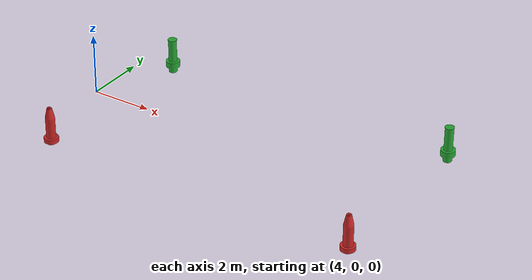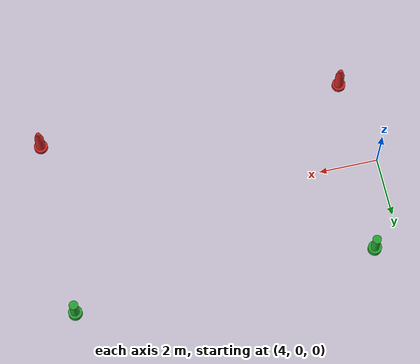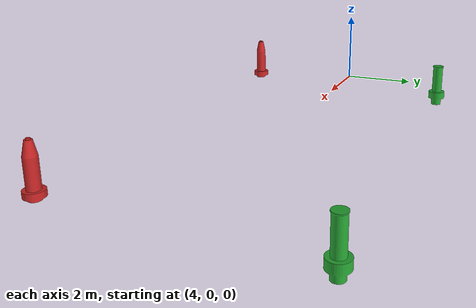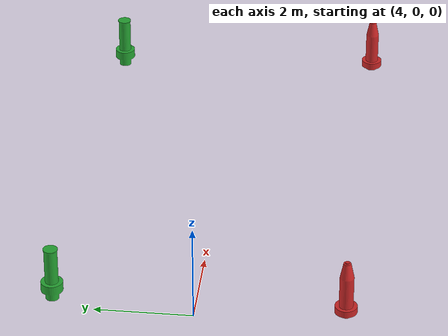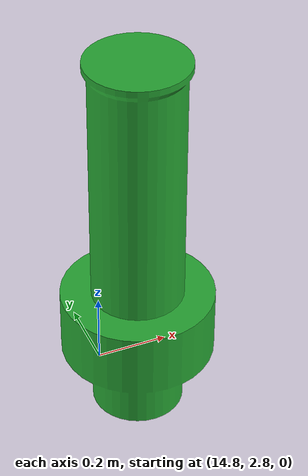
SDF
<sdf version="1.7">
 <world name="default">
  <light name="sun" type="directional">
   <pose>0 0 10 0 -0 0</pose>
   <diffuse>0.8 0.8 0.8 1</diffuse>
   <specular>0.2 0.2 0.2 1</specular>
   <attenuation>
    <range>1000</range>
    <constant>0.9</constant>
    <linear>0.01</linear>
    <quadratic>0.001</quadratic>
   </attenuation>
   <direction>-0.5 0.1 -0.9</direction>
   <spot><inner_angle>0</inner_angle><outer_angle>0</outer_angle><falloff>0</falloff></spot>
  </light>
  <physics name="default_physics" default="0" type="ode">
   <ode>
    <solver>
     <type>quick</type>
     <iters>100</iters>
     <sor>1</sor>
     <use_dynamic_moi_rescaling>0</use_dynamic_moi_rescaling>
    </solver>
    <constraints>
     <cfm>0</cfm>
     <erp>0.9</erp>
     <contact_max_correcting_vel>0.1</contact_max_correcting_vel>
     <contact_surface_layer>0</contact_surface_layer>
    </constraints>
   </ode>
   <real_time_update_rate>-1</real_time_update_rate>
   <max_step_size>0.001</max_step_size>
   <real_time_factor>1</real_time_factor>
  </physics>
  <gravity>0 0 -9.8</gravity>
  <magnetic_field>6e-06 2.3e-05 -4.2e-05</magnetic_field>
  <atmosphere type="adiabatic"/>
  <scene><ambient>0.4 0.4 0.4 1</ambient><background>0.7 0.7 0.7 1</background><shadows>1</shadows></scene>
  <spherical_coordinates>
   <surface_model>EARTH_WGS84</surface_model>
   <latitude_deg>0</latitude_deg>
   <longitude_deg>0</longitude_deg>
   <elevation>0</elevation>
   <heading_deg>0</heading_deg>
  </spherical_coordinates>
  <model name="red_buoy">
   <static>0</static>
   <link name="buoyl">
    <velocity_decay><linear>0.001</linear><angular>0.001</angular></velocity_decay>
    <inertial>
     <mass>100</mass>
     <inertia><ixx>10</ixx><ixy>0</ixy><ixz>0</ixz><iyy>10</iyy><iyz>0</iyz><izz>10</izz></inertia>
    </inertial>
    <collision name="buoyc">
     <geometry>
      <mesh><uri>model://red_buoy/mesh/red_buoy.dae</uri></mesh>
      <cylinder><radius>0.25</radius><length>1</length></cylinder>
     </geometry>
    </collision>
    <visual name="buoyv">
     <geometry><mesh><uri>model://red_buoy/mesh/red_buoy.dae</uri></mesh></geometry>
     <material>
      <script><uri>file://media/materials/scripts/gazebo.material</uri><name>Gazebo/Red</name></script>
     </material>
    </visual>
   </link>
   <plugin name="BuoyancyPlugin" filename="libbuoyancy_gazebo_plugin.so">
    <wave_model>ocean</wave_model>
    <fluid_density>1000</fluid_density>
    <fluid_level>0.0</fluid_level>
    <linear_drag>25.0</linear_drag>
    <angular_drag>2.0</angular_drag>
    <buoyancy name="buoyancy_cylinder">
     <link_name>buoyl</link_name>
     <pose>0 0 -0.5 0 0 0</pose>
     <geometry><cylinder><radius>0.25</radius><length>1.0</length></cylinder></geometry>
    </buoyancy>
   </plugin>
   <pose>4.5788 -3 0.482229 0 -0 0</pose>
  </model>
  <model name="green_buoy">
   <static>0</static>
   <link name="buoyl">
    <velocity_decay><linear>0.001</linear><angular>0.001</angular></velocity_decay>
    <inertial>
     <pose>0 0 -10 0 -0 0</pose>
     <mass>100</mass>
     <inertia><ixx>10</ixx><ixy>0</ixy><ixz>0</ixz><iyy>10</iyy><iyz>0</iyz><izz>10</izz></inertia>
    </inertial>
    <collision name="buoyc">
     <geometry>
      <mesh><uri>model://green_buoy/mesh/green_buoy.dae</uri></mesh>
      <cylinder><radius>0.25</radius><length>1</length></cylinder>
     </geometry>
    </collision>
    <visual name="buoyv">
     <geometry><mesh><uri>model://green_buoy/mesh/green_buoy.dae</uri></mesh></geometry>
     <material>
      <script><uri>file://media/materials/scripts/gazebo.material</uri><name>Gazebo/Green</name></script>
     </material>
    </visual>
   </link>
   <plugin name="BuoyancyPlugin" filename="libbuoyancy_gazebo_plugin.so">
    <wave_model>ocean</wave_model>
    <fluid_density>1000</fluid_density>
    <fluid_level>0.0</fluid_level>
    <linear_drag>25.0</linear_drag>
    <angular_drag>2.0</angular_drag>
    <buoyancy name="buoyancy_cylinder">
     <link_name>buoyl</link_name>
     <geometry><cylinder><radius>0.35</radius><length>1.0</length></cylinder></geometry>
    </buoyancy>
   </plugin>
   <pose>4.86433 3 0.235831 0 -0 0</pose>
  </model>
  <model name="green_buoy_0">
   <static>0</static>
   <link name="buoyl">
    <velocity_decay><linear>0.001</linear><angular>0.001</angular></velocity_decay>
    <inertial>
     <pose>0 0 -10 0 -0 0</pose>
     <mass>100</mass>
     <inertia><ixx>10</ixx><ixy>0</ixy><ixz>0</ixz><iyy>10</iyy><iyz>0</iyz><izz>10</izz></inertia>
    </inertial>
    <collision name="buoyc">
     <geometry>
      <mesh><uri>model://green_buoy/mesh/green_buoy.dae</uri></mesh>
      <cylinder><radius>0.25</radius><length>1</length></cylinder>
     </geometry>
    </collision>
    <visual name="buoyv">
     <geometry><mesh><uri>model://green_buoy/mesh/green_buoy.dae</uri></mesh></geometry>
     <material>
      <script><uri>file://media/materials/scripts/gazebo.material</uri><name>Gazebo/Green</name></script>
     </material>
    </visual>
   </link>
   <plugin name="BuoyancyPlugin" filename="libbuoyancy_gazebo_plugin.so">
    <wave_model>ocean</wave_model>
    <fluid_density>1000</fluid_density>
    <fluid_level>0.0</fluid_level>
    <linear_drag>25.0</linear_drag>
    <angular_drag>2.0</angular_drag>
    <buoyancy name="buoyancy_cylinder">
     <link_name>buoyl</link_name>
     <geometry><cylinder><radius>0.35</radius><length>1.0</length></cylinder></geometry>
    </buoyancy>
   </plugin>
   <pose>15 3 0.235831 0 -0 0</pose>
  </model>
  <model name="red_buoy_0">
   <static>0</static>
   <link name="buoyl">
    <velocity_decay><linear>0.001</linear><angular>0.001</angular></velocity_decay>
    <inertial>
     <mass>100</mass>
     <inertia><ixx>10</ixx><ixy>0</ixy><ixz>0</ixz><iyy>10</iyy><iyz>0</iyz><izz>10</izz></inertia>
    </inertial>
    <collision name="buoyc">
     <geometry>
      <mesh><uri>model://red_buoy/mesh/red_buoy.dae</uri></mesh>
      <cylinder><radius>0.25</radius><length>1</length></cylinder>
     </geometry>
    </collision>
    <visual name="buoyv">
     <geometry><mesh><uri>model://red_buoy/mesh/red_buoy.dae</uri></mesh></geometry>
     <material>
      <script><uri>file://media/materials/scripts/gazebo.material</uri><name>Gazebo/Red</name></script>
     </material>
    </visual>
   </link>
   <plugin name="BuoyancyPlugin" filename="libbuoyancy_gazebo_plugin.so">
    <wave_model>ocean</wave_model>
    <fluid_density>1000</fluid_density>
    <fluid_level>0.0</fluid_level>
    <linear_drag>25.0</linear_drag>
    <angular_drag>2.0</angular_drag>
    <buoyancy name="buoyancy_cylinder">
     <link_name>buoyl</link_name>
     <pose>0 0 -0.5 0 0 0</pose>
     <geometry><cylinder><radius>0.25</radius><length>1.0</length></cylinder></geometry>
    </buoyancy>
   </plugin>
   <pose>15 -3 0.482229 0 -0 0</pose>
  </model>
 </world>
</sdf>
